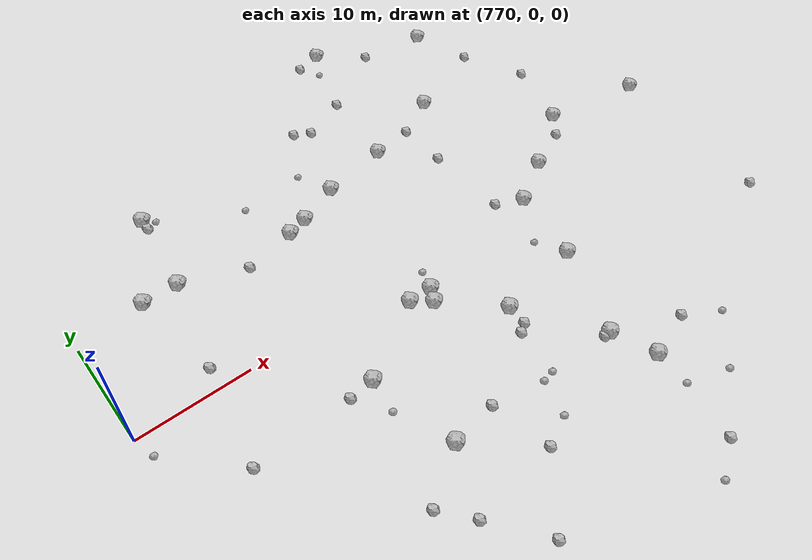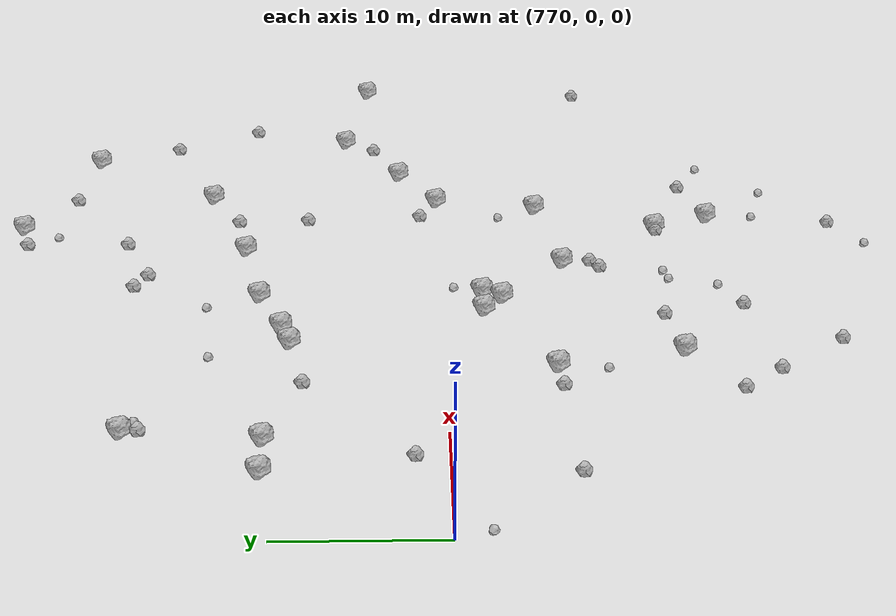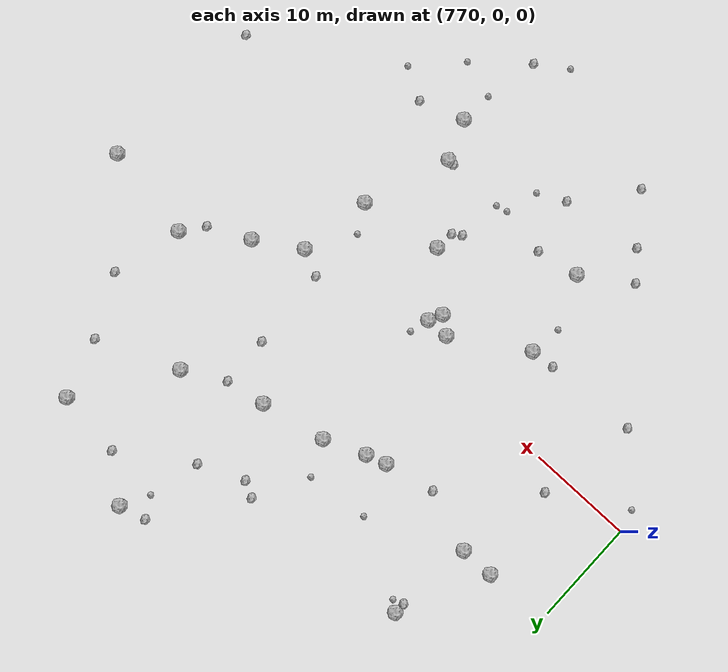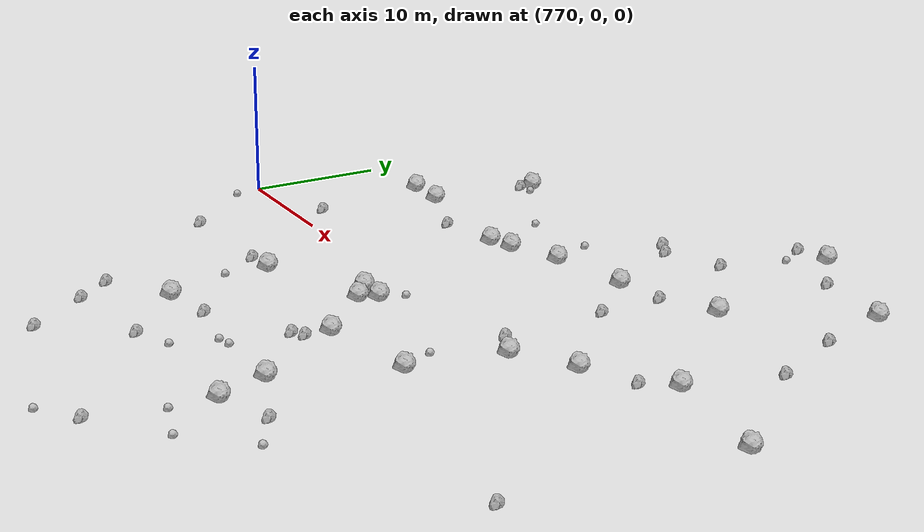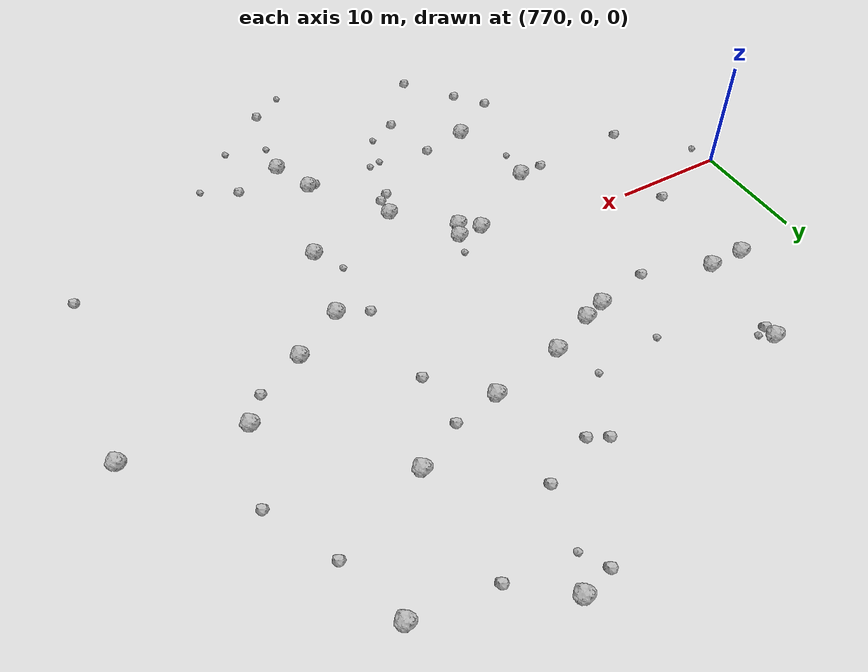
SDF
<sdf version="1.6">
 <world name="default">
  <include><uri>model://sun</uri></include>
  <model name="rock1_20_4">
   <include><uri>model://rock1</uri><pose>795.6948809893266 12.119200891268555 0.5 0 0 0</pose></include>
  </model>
  <model name="rock1_20_5">
   <include><uri>model://rock1</uri><pose>779.4494776815505 10.92057410589453 0.5 0 0 0</pose></include>
  </model>
  <model name="rock1_20_6">
   <include><uri>model://rock1</uri><pose>804.6430083722779 -14.837798442423795 0.5 0 0 0</pose></include>
  </model>
  <model name="rock1_20_7">
   <include><uri>model://rock1</uri><pose>827.7486939932762 5.519573462635044 0.5 0 0 0</pose></include>
  </model>
  <model name="rock1_20_8">
   <include><uri>model://rock1</uri><pose>795.9482049941585 -2.4585016635470858 0.5 0 0 0</pose></include>
  </model>
  <model name="rock1_20_9">
   <include><uri>model://rock1</uri><pose>809.6407709871326 16.27125324957393 0.5 0 0 0</pose></include>
  </model>
  <model name="rock1_20_10">
   <include><uri>model://rock1</uri><pose>799.8656154589276 -8.008657548103322 0.5 0 0 0</pose></include>
  </model>
  <model name="rock1_20_11">
   <include><uri>model://rock1</uri><pose>801.9217289685732 13.422722012834377 0.5 0 0 0</pose></include>
  </model>
  <model name="rock1_20_12">
   <include><uri>model://rock1</uri><pose>805.2237620126423 29.067403435683126 0.5 0 0 0</pose></include>
  </model>
  <model name="rock1_20_13">
   <include><uri>model://rock1</uri><pose>808.8059017714119 0.3542088476103338 0.5 0 0 0</pose></include>
  </model>
  <model name="rock1_20_14">
   <include><uri>model://rock1</uri><pose>813.0455983335335 3.017874504146782 0.5 0 0 0</pose></include>
  </model>
  <model name="rock1_20_15">
   <include><uri>model://rock1</uri><pose>788.6847282961486 -14.851450808408046 0.5 0 0 0</pose></include>
  </model>
  <model name="rock1_20_16">
   <include><uri>model://rock1</uri><pose>789.9146365280443 9.874052721575659 0.5 0 0 0</pose></include>
  </model>
  <model name="rock1_20_17">
   <include><uri>model://rock1</uri><pose>780.2854305799801 19.219128243985352 0.5 0 0 0</pose></include>
  </model>
  <model name="rock1_20_18">
   <include><uri>model://rock1</uri><pose>806.1590993065211 -18.638812444428844 0.5 0 0 0</pose></include>
  </model>
  <model name="rock1_20_19">
   <include><uri>model://rock1</uri><pose>776.2475550326449 10.886871100406552 0.5 0 0 0</pose></include>
  </model>
  <model name="rock1_20_20">
   <include><uri>model://rock1</uri><pose>791.8253559795788 10.497035166005809 0.5 0 0 0</pose></include>
  </model>
  <model name="rock1_20_21">
   <include><uri>model://rock1</uri><pose>815.5594151652824 25.151355896435376 0.5 0 0 0</pose></include>
  </model>
  <model name="rock1_20_22">
   <include><uri>model://rock1</uri><pose>793.7493280642194 -2.5078935270462352 0.5 0 0 0</pose></include>
  </model>
  <model name="rock1_20_23">
   <include><uri>model://rock1</uri><pose>818.5615340166167 7.013920089276269 0.5 0 0 0</pose></include>
  </model>
  <model name="rock1_20_24">
   <include><uri>model://rock1</uri><pose>786.9452086548297 -6.797329106474937 0.5 0 0 0</pose></include>
  </model>
  <model name="rock1_20_25">
   <include><uri>model://rock1</uri><pose>795.3174945049203 -3.7415014518500236 0.5 0 0 0</pose></include>
  </model>
  <model name="rock1_20_26">
   <include><uri>model://rock1</uri><pose>807.6592663487731 -6.607501673524773 0.5 0 0 0</pose></include>
  </model>
  <model name="rock2_20_0">
   <include><uri>model://rock2</uri><pose>784.1107777803446 -17.92621510631653 0.3 0 0 0</pose></include>
  </model>
  <model name="rock2_20_1">
   <include><uri>model://rock2</uri><pose>803.9811866494744 -14.843650336351148 0.3 0 0 0</pose></include>
  </model>
  <model name="rock2_20_2">
   <include><uri>model://rock2</uri><pose>796.8340431627548 20.46355320876455 0.3 0 0 0</pose></include>
  </model>
  <model name="rock2_20_3">
   <include><uri>model://rock2</uri><pose>799.7465266916238 -9.87177055139497 0.3 0 0 0</pose></include>
  </model>
  <model name="rock2_20_4">
   <include><uri>model://rock2</uri><pose>798.923363565851 -10.462052715453055 0.3 0 0 0</pose></include>
  </model>
  <model name="rock2_20_5">
   <include><uri>model://rock2</uri><pose>817.3817423768568 19.53903189854551 0.3 0 0 0</pose></include>
  </model>
  <model name="rock2_20_6">
   <include><uri>model://rock2</uri><pose>792.7468817971593 -14.105216132669767 0.3 0 0 0</pose></include>
  </model>
  <model name="rock2_20_7">
   <include><uri>model://rock2</uri><pose>810.4037220203 -17.21072224148657 0.3 0 0 0</pose></include>
  </model>
  <model name="rock2_20_8">
   <include><uri>model://rock2</uri><pose>826.6619174338094 -10.86442650803053 0.3 0 0 0</pose></include>
  </model>
  <model name="rock2_20_9">
   <include><uri>model://rock2</uri><pose>793.9138378514637 -19.378035764181362 0.3 0 0 0</pose></include>
  </model>
  <model name="rock2_20_10">
   <include><uri>model://rock2</uri><pose>805.7102131184128 14.137593767128138 0.3 0 0 0</pose></include>
  </model>
  <model name="rock2_20_11">
   <include><uri>model://rock2</uri><pose>784.6065898908842 -6.994586981615143 0.3 0 0 0</pose></include>
  </model>
  <model name="rock2_20_12">
   <include><uri>model://rock2</uri><pose>809.1690808525428 25.921002442414455 0.3 0 0 0</pose></include>
  </model>
  <model name="rock2_20_13">
   <include><uri>model://rock2</uri><pose>804.9192590813072 -27.030699442193065 0.3 0 0 0</pose></include>
  </model>
  <model name="rock2_20_14">
   <include><uri>model://rock2</uri><pose>780.220665167138 18.177083500636655 0.3 0 0 0</pose></include>
  </model>
  <model name="rock2_20_15">
   <include><uri>model://rock2</uri><pose>798.3288947925603 19.67972216453856 0.3 0 0 0</pose></include>
  </model>
  <model name="rock2_20_16">
   <include><uri>model://rock2</uri><pose>785.10528709889 8.846106217060544 0.3 0 0 0</pose></include>
  </model>
  <model name="rock2_20_17">
   <include><uri>model://rock2</uri><pose>820.2987456799088 13.775647784148248 0.3 0 0 0</pose></include>
  </model>
  <model name="rock2_20_18">
   <include><uri>model://rock2</uri><pose>786.2116453498477 -20.489057285574486 0.3 0 0 0</pose></include>
  </model>
  <model name="rock2_20_19">
   <include><uri>model://rock2</uri><pose>775.8142837763893 -7.418740757498529 0.3 0 0 0</pose></include>
  </model>
  <model name="rock2_20_20">
   <include><uri>model://rock2</uri><pose>789.5872019903003 -24.927408780623978 0.3 0 0 0</pose></include>
  </model>
  <model name="rock2_20_21">
   <include><uri>model://rock2</uri><pose>805.8893580072299 9.34069656026221 0.3 0 0 0</pose></include>
  </model>
  <model name="rock2_20_22">
   <include><uri>model://rock2</uri><pose>777.4878279032122 2.0486853258035467 0.3 0 0 0</pose></include>
  </model>
  <model name="rock2_20_23">
   <include><uri>model://rock2</uri><pose>802.5869589322182 21.547843977859486 0.3 0 0 0</pose></include>
  </model>
  <model name="rock2_20_24">
   <include><uri>model://rock2</uri><pose>816.9518074100829 4.909065287621971 0.3 0 0 0</pose></include>
  </model>
  <model name="rock2_20_25">
   <include><uri>model://rock2</uri><pose>802.6477597057731 28.421376906077413 0.3 0 0 0</pose></include>
  </model>
  <model name="rock2_20_26">
   <include><uri>model://rock2</uri><pose>806.3262783097937 1.5236101717341448 0.3 0 0 0</pose></include>
  </model>
  <model name="rock3_20_0">
   <include><uri>model://rock3</uri><pose>788.1604547648205 14.764445672739306 0.2 0 0 0</pose></include>
  </model>
  <model name="rock3_20_1">
   <include><uri>model://rock3</uri><pose>798.4326970342853 -14.714655699871503 0.2 0 0 0</pose></include>
  </model>
  <model name="rock3_20_2">
   <include><uri>model://rock3</uri><pose>809.5903679993386 -23.043540096322893 0.2 0 0 0</pose></include>
  </model>
  <model name="rock3_20_3">
   <include><uri>model://rock3</uri><pose>770.570415210652 -2.1409368787630676 0.2 0 0 0</pose></include>
  </model>
  <model name="rock3_20_4">
   <include><uri>model://rock3</uri><pose>813.4361037760717 -18.974613305512378 0.2 0 0 0</pose></include>
  </model>
  <model name="rock3_20_5">
   <include><uri>model://rock3</uri><pose>805.9303540709111 -21.89624789993175 0.2 0 0 0</pose></include>
  </model>
  <model name="rock3_20_6">
   <include><uri>model://rock3</uri><pose>806.1479981982379 -4.017271439446084 0.2 0 0 0</pose></include>
  </model>
  <model name="rock3_20_7">
   <include><uri>model://rock3</uri><pose>803.7751777050282 26.44915743382407 0.2 0 0 0</pose></include>
  </model>
  <model name="rock3_20_8">
   <include><uri>model://rock3</uri><pose>801.9986273889176 -29.055657605198824 0.2 0 0 0</pose></include>
  </model>
  <model name="rock3_20_9">
   <include><uri>model://rock3</uri><pose>797.3536815013016 -14.957559286856412 0.2 0 0 0</pose></include>
  </model>
  <model name="rock3_20_10">
   <include><uri>model://rock3</uri><pose>796.4222269772492 -0.6418999168283328 0.2 0 0 0</pose></include>
  </model>
  <model name="rock3_20_11">
   <include><uri>model://rock3</uri><pose>794.1243092676136 15.3897410917156 0.2 0 0 0</pose></include>
  </model>
  <model name="rock3_20_12">
   <include><uri>model://rock3</uri><pose>786.4971284720576 -9.925754057696835 0.2 0 0 0</pose></include>
  </model>
  <model name="rock3_20_13">
   <include><uri>model://rock3</uri><pose>796.4977144275015 -18.123164542588036 0.2 0 0 0</pose></include>
  </model>
  <model name="rock3_20_14">
   <include><uri>model://rock3</uri><pose>781.1607472628158 18.48568850264202 0.2 0 0 0</pose></include>
  </model>
 </world>
</sdf>
